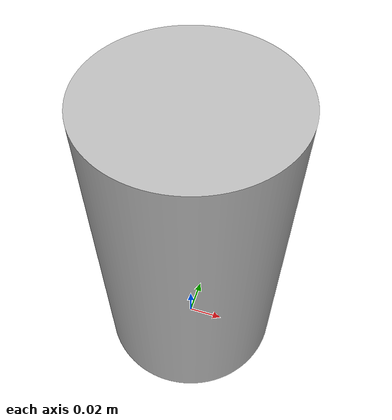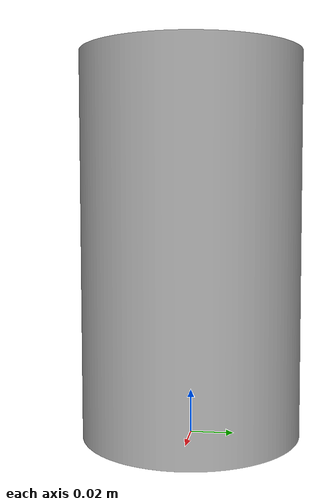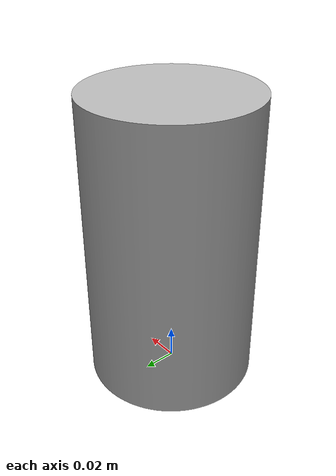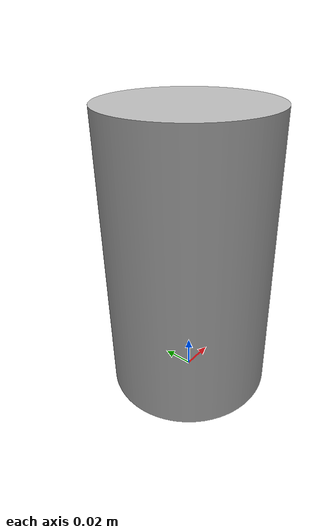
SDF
<?xml version="1.0" ?>
<sdf version="1.6">
  <model name="rod_target">
    <link name="link">
      <inertial>
        <pose>0 0 0 0 0 0</pose>
        <mass>1000.0</mass>
        <inertia>
          <ixx>0.083</ixx>
          <ixy>0.0</ixy>
          <ixz>0.0</ixz>
          <iyy>0.083</iyy>
          <iyz>0.0</iyz>
          <izz>0.083</izz>
        </inertia>
      </inertial>
      <collision name="collision">
        <geometry>
          <mesh>
            <uri>model://rod_target/meshes/rod_target.stl</uri>
            <!-- 10.16 cm in diameter and about 17.78 cm in length -->
            <scale>0.0001016 0.0001016 0.000027</scale>
          </mesh>
        </geometry>
      </collision>
      <visual name="visual">
        <geometry>
          <mesh>
            <uri>model://rod_target/meshes/COLLISION_rod_target.stl</uri>
            <!-- 10.16 cm in diameter and about 17.78 cm in length -->
            <scale>0.0001016 0.0001016 0.000027</scale>
          </mesh>
        </geometry>
      </visual>
    </link>
  </model>
</sdf>
